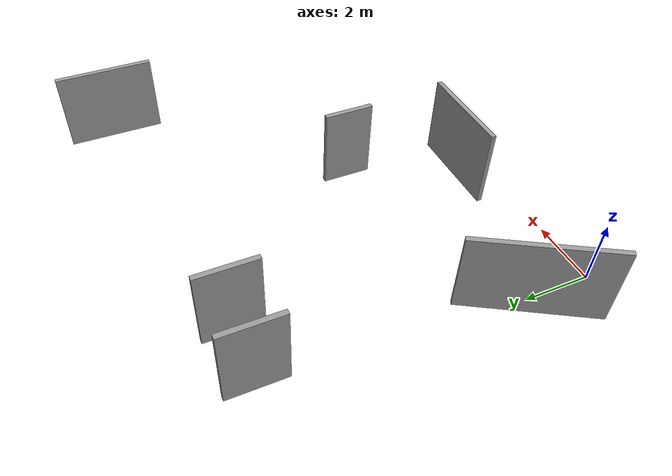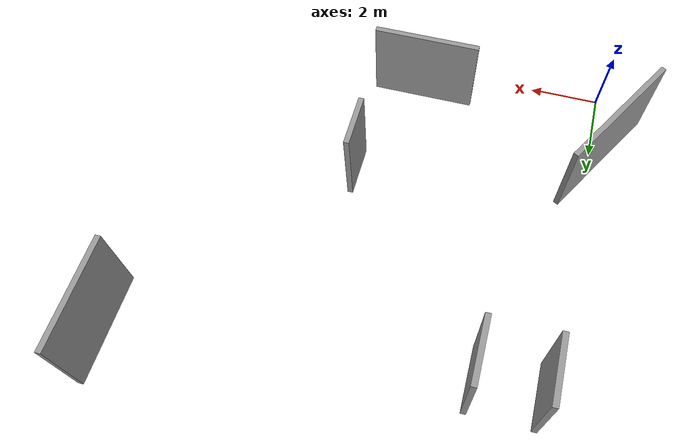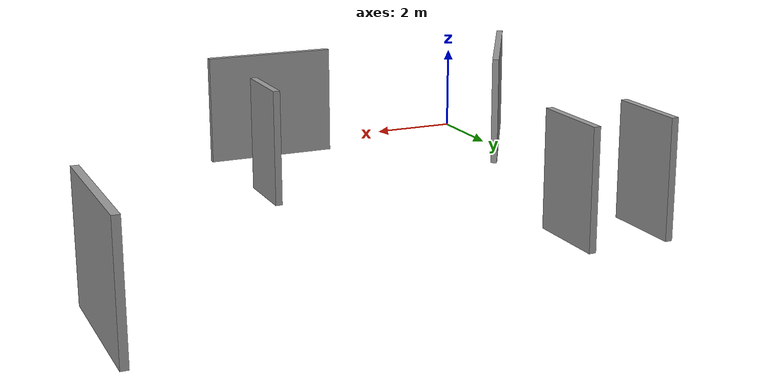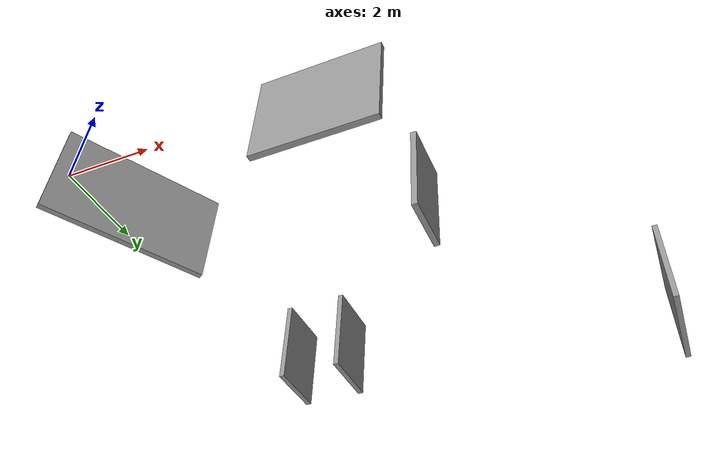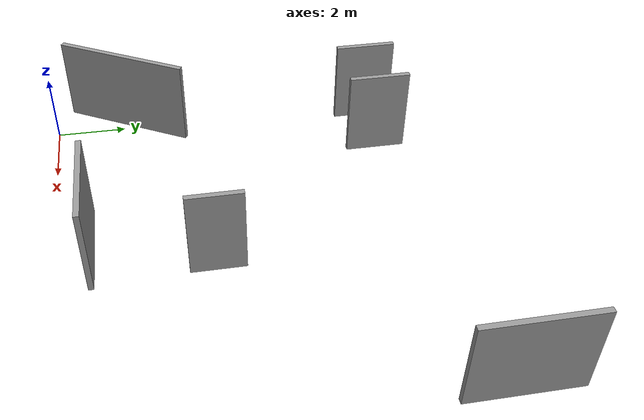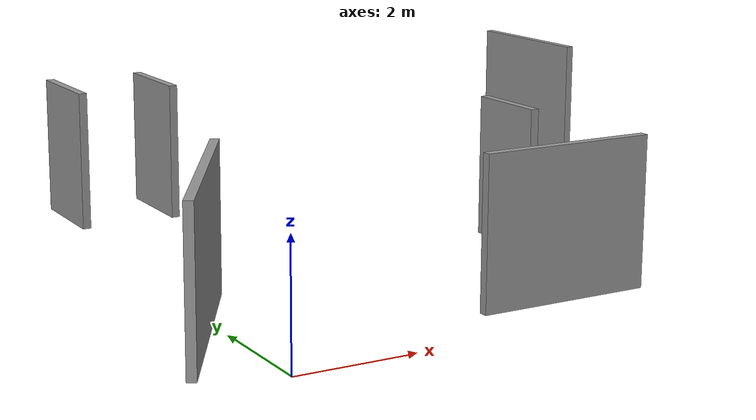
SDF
<?xml version='1.0'?>
<sdf version='1.7'>
  <model name='maze_new'>
    <pose>5.14593 6.04962 0 0 -0 0</pose>
    <link name='Wall_39'>
      <collision name='Wall_39_Collision'>
        <geometry>
          <box>
            <size>3 0.15 2.5</size>
          </box>
        </geometry>
        <pose>0 0 1.25 0 -0 0</pose>
      </collision>
      <visual name='Wall_39_Visual'>
        <pose>0 0 1.25 0 -0 0</pose>
        <geometry>
          <box>
            <size>3 0.15 2.5</size>
          </box>
        </geometry>
        <material>
          <script>
            <uri>file://media/materials/scripts/gazebo.material</uri>
            <name>Gazebo/Grey</name>
          </script>
          <ambient>1 1 1 1</ambient>
        </material>
        <meta>
          <layer>0</layer>
        </meta>
      </visual>
      <pose>0.150633 -5.04701 0 0 -0 0</pose>
    </link>
    <link name='Wall_42'>
      <collision name='Wall_42_Collision'>
        <geometry>
          <box>
            <size>4 0.15 2.5</size>
          </box>
        </geometry>
        <pose>0 0 1.25 0 -0 0</pose>
      </collision>
      <visual name='Wall_42_Visual'>
        <pose>0 0 1.25 0 -0 0</pose>
        <geometry>
          <box>
            <size>4 0.15 2.5</size>
          </box>
        </geometry>
        <material>
          <script>
            <uri>file://media/materials/scripts/gazebo.material</uri>
            <name>Gazebo/Grey</name>
          </script>
          <ambient>1 1 1 1</ambient>
        </material>
        <meta>
          <layer>0</layer>
        </meta>
      </visual>
      <pose>-5.41994 -3.87568 0 0 -0 -2.0944</pose>
    </link>
    <link name='Wall_45'>
      <collision name='Wall_45_Collision'>
        <geometry>
          <box>
            <size>1.5 0.15 2.5</size>
          </box>
        </geometry>
        <pose>0 0 1.25 0 -0 0</pose>
      </collision>
      <visual name='Wall_45_Visual'>
        <pose>0 0 1.25 0 -0 0</pose>
        <geometry>
          <box>
            <size>1.5 0.15 2.5</size>
          </box>
        </geometry>
        <material>
          <script>
            <uri>file://media/materials/scripts/gazebo.material</uri>
            <name>Gazebo/Grey</name>
          </script>
          <ambient>1 1 1 1</ambient>
        </material>
        <meta>
          <layer>0</layer>
        </meta>
      </visual>
      <pose>1.39055 -1.77441 0 0 -0 -1.5708</pose>
    </link>
    <link name='Wall_47'>
      <collision name='Wall_47_Collision'>
        <geometry>
          <box>
            <size>1.75 0.15 2.5</size>
          </box>
        </geometry>
        <pose>0 0 1.25 0 -0 0</pose>
      </collision>
      <visual name='Wall_47_Visual'>
        <pose>0 0 1.25 0 -0 0</pose>
        <geometry>
          <box>
            <size>1.75 0.15 2.5</size>
          </box>
        </geometry>
        <material>
          <script>
            <uri>file://media/materials/scripts/gazebo.material</uri>
            <name>Gazebo/Grey</name>
          </script>
          <ambient>1 1 1 1</ambient>
        </material>
        <meta>
          <layer>0</layer>
        </meta>
      </visual>
      <pose>-4.78532 3.51315 0 0 -0 -1.5708</pose>
    </link>
    <link name='Wall_49'>
      <collision name='Wall_49_Collision'>
        <geometry>
          <box>
            <size>1.75 0.15 2.5</size>
          </box>
        </geometry>
        <pose>0 0 1.25 0 -0 0</pose>
      </collision>
      <visual name='Wall_49_Visual'>
        <pose>0 0 1.25 0 -0 0</pose>
        <geometry>
          <box>
            <size>1.75 0.15 2.5</size>
          </box>
        </geometry>
        <material>
          <script>
            <uri>file://media/materials/scripts/gazebo.material</uri>
            <name>Gazebo/Grey</name>
          </script>
          <ambient>1 1 1 1</ambient>
        </material>
        <meta>
          <layer>0</layer>
        </meta>
      </visual>
      <pose>-3.02739 3.51315 0 0 -0 -1.5708</pose>
    </link>
    <link name='Wall_51'>
      <collision name='Wall_51_Collision'>
        <geometry>
          <box>
            <size>3 0.15 2.5</size>
          </box>
        </geometry>
        <pose>0 0 1.25 0 -0 0</pose>
      </collision>
      <visual name='Wall_51_Visual'>
        <pose>0 0 1.25 0 -0 0</pose>
        <geometry>
          <box>
            <size>3 0.15 2.5</size>
          </box>
        </geometry>
        <material>
          <script>
            <uri>file://media/materials/scripts/gazebo.material</uri>
            <name>Gazebo/Grey</name>
          </script>
          <ambient>1 1 1 1</ambient>
        </material>
        <meta>
          <layer>0</layer>
        </meta>
      </visual>
      <pose>6.40989 4.54962 0 0 -0 1.5708</pose>
    </link>
    <static>1</static>
  </model>
</sdf>
